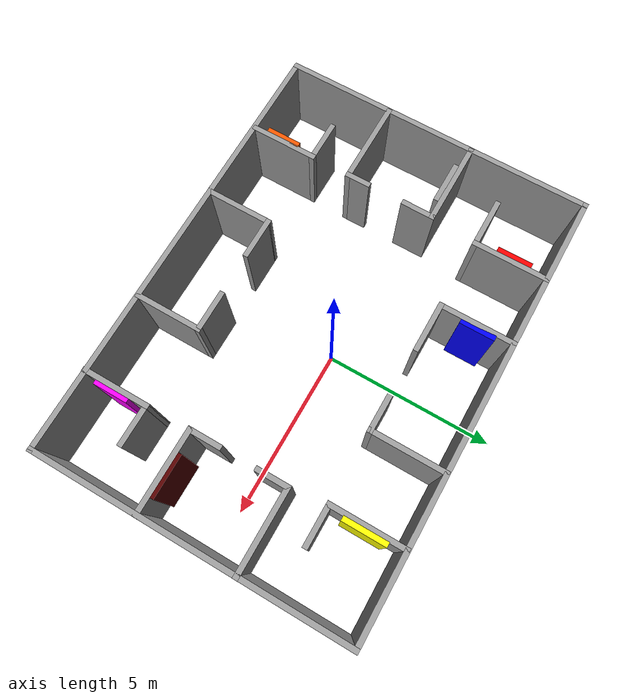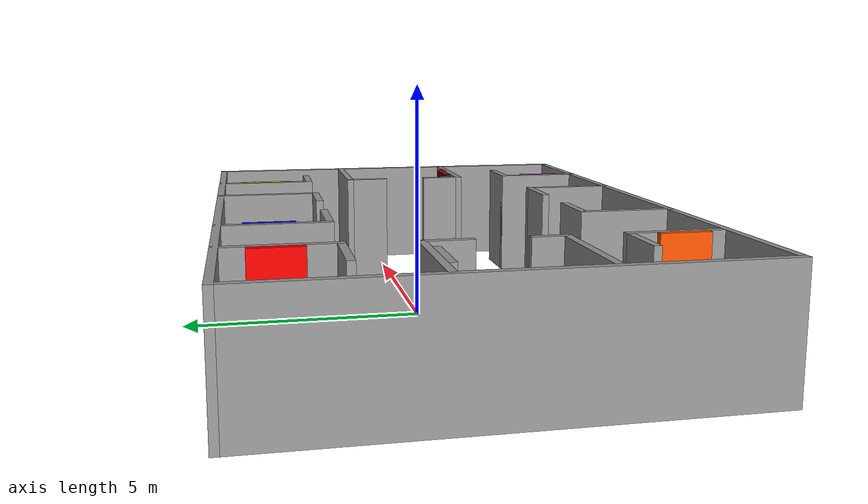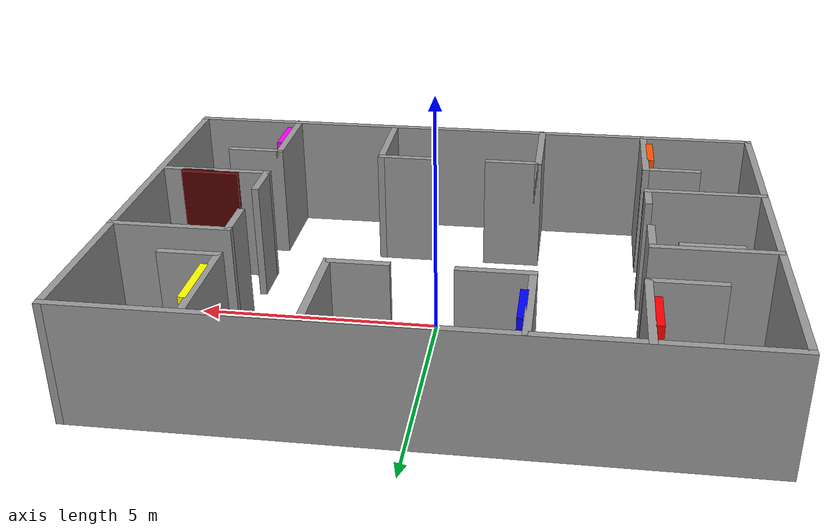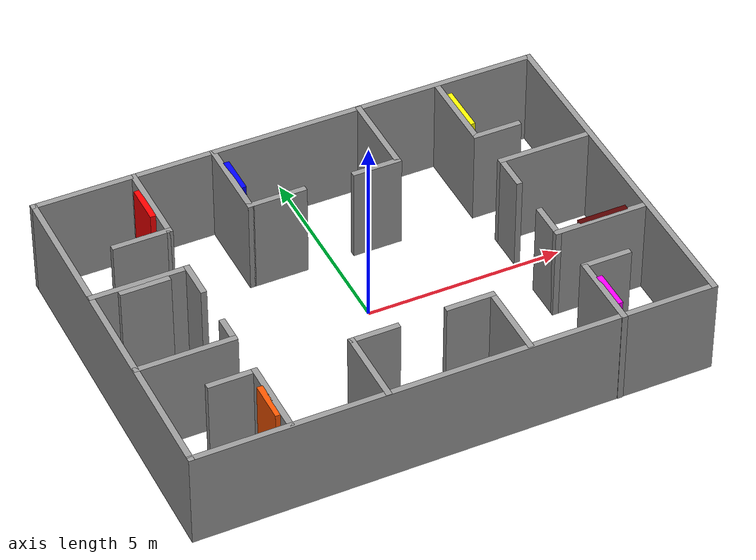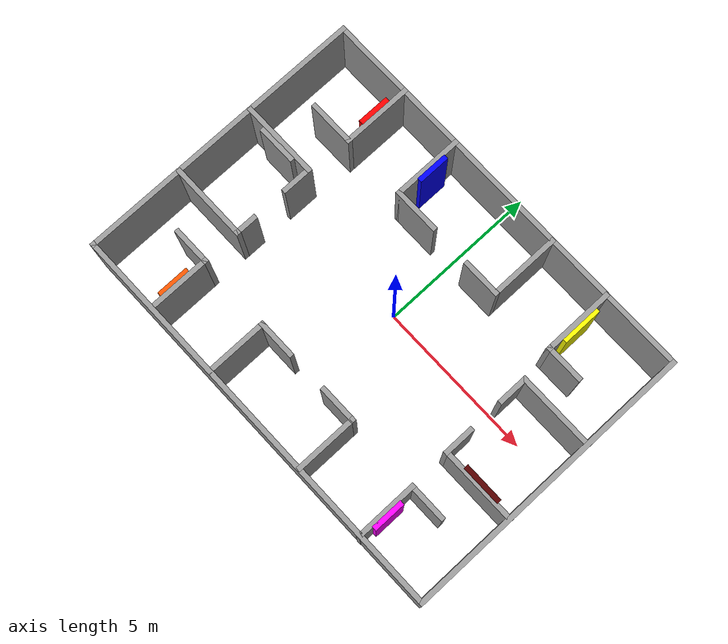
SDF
<?xml version='1.0'?>
<sdf version='1.6'>
  <model name='world2'>
    <pose frame=''>-0.14773 -0.383057 0 0 -0 0</pose>
    <link name='Wall_100'>
      <collision name='Wall_100_Collision'>
        <geometry>
          <box>
            <size>1.25 0.15 2.5</size>
          </box>
        </geometry>
        <pose frame=''>0 0 1.25 0 -0 0</pose>
      </collision>
      <visual name='Wall_100_Visual'>
        <pose frame=''>0 0 1.25 0 -0 0</pose>
        <geometry>
          <box>
            <size>1.25 0.15 2.5</size>
          </box>
        </geometry>
        <material>
          <script>
            <uri>file://media/materials/scripts/gazebo.material</uri>
            <name>Gazebo/Grey</name>
          </script>
          <ambient>1 1 1 1</ambient>
        </material>
        <meta>
          <layer>0</layer>
        </meta>
      </visual>
      <pose frame=''>1.33062 2.43561 0 0 -0 3.14159</pose>
    </link>
    <link name='Wall_104'>
      <collision name='Wall_104_Collision'>
        <geometry>
          <box>
            <size>1.25 0.15 2.5</size>
          </box>
        </geometry>
        <pose frame=''>0 0 1.25 0 -0 0</pose>
      </collision>
      <visual name='Wall_104_Visual'>
        <pose frame=''>0 0 1.25 0 -0 0</pose>
        <geometry>
          <box>
            <size>1.25 0.15 2.5</size>
          </box>
        </geometry>
        <material>
          <script>
            <uri>file://media/materials/scripts/gazebo.material</uri>
            <name>Gazebo/Grey</name>
          </script>
          <ambient>0 0 0 1</ambient>
        </material>
        <meta>
          <layer>0</layer>
        </meta>
      </visual>
      <pose frame=''>-5.17231 0.955395 0 0 -0 0</pose>
    </link>
    <link name='Wall_107'>
      <collision name='Wall_107_Collision'>
        <geometry>
          <box>
            <size>1 0.15 2.5</size>
          </box>
        </geometry>
        <pose frame=''>0 0 1.25 0 -0 0</pose>
      </collision>
      <visual name='Wall_107_Visual'>
        <pose frame=''>0 0 1.25 0 -0 0</pose>
        <geometry>
          <box>
            <size>1 0.15 2.5</size>
          </box>
        </geometry>
        <material>
          <script>
            <uri>file://media/materials/scripts/gazebo.material</uri>
            <name>Gazebo/Grey</name>
          </script>
          <ambient>1 0 0 1</ambient>
        </material>
        <meta>
          <layer>0</layer>
        </meta>
      </visual>
      <pose frame=''>-4.073 3.54743 0 0 0 -1.5708</pose>
    </link>
    <link name='Wall_109'>
      <collision name='Wall_109_Collision'>
        <geometry>
          <box>
            <size>1.25 0.15 2.5</size>
          </box>
        </geometry>
        <pose frame=''>0 0 1.25 0 -0 0</pose>
      </collision>
      <visual name='Wall_109_Visual'>
        <pose frame=''>0 0 1.25 0 -0 0</pose>
        <geometry>
          <box>
            <size>1.25 0.15 2.5</size>
          </box>
        </geometry>
        <material>
          <script>
            <uri>file://media/materials/scripts/gazebo.material</uri>
            <name>Gazebo/Grey</name>
          </script>
          <ambient>1 1 0 1</ambient>
        </material>
        <meta>
          <layer>0</layer>
        </meta>
      </visual>
      <pose frame=''>4.05288 3.48277 0 0 0 -1.5708</pose>
    </link>
    <link name='Wall_111'>
      <collision name='Wall_111_Collision'>
        <geometry>
          <box>
            <size>1 0.15 2.5</size>
          </box>
        </geometry>
        <pose frame=''>0 0 1.25 0 -0 0</pose>
      </collision>
      <visual name='Wall_111_Visual'>
        <pose frame=''>0 0 1.25 0 -0 0</pose>
        <geometry>
          <box>
            <size>1 0.15 2.5</size>
          </box>
        </geometry>
        <material>
          <script>
            <uri>file://media/materials/scripts/gazebo.material</uri>
            <name>Gazebo/Grey</name>
          </script>
          <ambient>1 0.333333 0 1</ambient>
        </material>
        <meta>
          <layer>0</layer>
        </meta>
      </visual>
      <pose frame=''>-4.17357 -3.65323 0 0 0 -1.5708</pose>
    </link>
    <link name='Wall_113'>
      <collision name='Wall_113_Collision'>
        <geometry>
          <box>
            <size>1.25 0.15 2.5</size>
          </box>
        </geometry>
        <pose frame=''>0 0 1.25 0 -0 0</pose>
      </collision>
      <visual name='Wall_113_Visual'>
        <pose frame=''>0 0 1.25 0 -0 0</pose>
        <geometry>
          <box>
            <size>1.25 0.15 2.5</size>
          </box>
        </geometry>
        <material>
          <script>
            <uri>file://media/materials/scripts/gazebo.material</uri>
            <name>Gazebo/Grey</name>
          </script>
          <ambient>0.333333 0 0 1</ambient>
        </material>
        <meta>
          <layer>0</layer>
        </meta>
      </visual>
      <pose frame=''>5.30686 -1.33755 0 0 -0 0</pose>
    </link>
    <link name='Wall_117'>
      <collision name='Wall_117_Collision'>
        <geometry>
          <box>
            <size>1 0.15 2.5</size>
          </box>
        </geometry>
        <pose frame=''>0 0 1.25 0 -0 0</pose>
      </collision>
      <visual name='Wall_117_Visual'>
        <pose frame=''>0 0 1.25 0 -0 0</pose>
        <geometry>
          <box>
            <size>1 0.15 2.5</size>
          </box>
        </geometry>
        <material>
          <script>
            <uri>file://media/materials/scripts/gazebo.material</uri>
            <name>Gazebo/Grey</name>
          </script>
          <ambient>1 0 1 1</ambient>
        </material>
        <meta>
          <layer>0</layer>
        </meta>
      </visual>
      <pose frame=''>4.23391 -3.67334 0 0 0 -1.5708</pose>
    </link>
    <link name='Wall_122'>
      <collision name='Wall_122_Collision'>
        <geometry>
          <box>
            <size>1 0.15 2.5</size>
          </box>
        </geometry>
        <pose frame=''>0 0 1.25 0 -0 0</pose>
      </collision>
      <visual name='Wall_122_Visual'>
        <pose frame=''>0 0 1.25 0 -0 0</pose>
        <geometry>
          <box>
            <size>1 0.15 2.5</size>
          </box>
        </geometry>
        <material>
          <script>
            <uri>file://media/materials/scripts/gazebo.material</uri>
            <name>Gazebo/Grey</name>
          </script>
          <ambient>0 0 1 1</ambient>
        </material>
        <meta>
          <layer>0</layer>
        </meta>
      </visual>
      <pose frame=''>-1.78005 3.58766 0 0 0 -1.5708</pose>
    </link>
    <link name='Wall_42'>
      <collision name='Wall_42_Collision'>
        <geometry>
          <box>
            <size>9.25 0.15 2.5</size>
          </box>
        </geometry>
        <pose frame=''>0 0 1.25 0 -0 0</pose>
      </collision>
      <visual name='Wall_42_Visual'>
        <pose frame=''>0 0 1.25 0 -0 0</pose>
        <geometry>
          <box>
            <size>9.25 0.15 2.5</size>
          </box>
        </geometry>
        <material>
          <script>
            <uri>file://media/materials/scripts/gazebo.material</uri>
            <name>Gazebo/Grey</name>
          </script>
          <ambient>1 1 1 1</ambient>
        </material>
        <meta>
          <layer>0</layer>
        </meta>
      </visual>
      <pose frame=''>-6.42629 0.005724 0 0 0 -1.5708</pose>
    </link>
    <link name='Wall_43'>
      <collision name='Wall_43_Collision'>
        <geometry>
          <box>
            <size>13 0.15 2.5</size>
          </box>
        </geometry>
        <pose frame=''>0 0 1.25 0 -0 0</pose>
      </collision>
      <visual name='Wall_43_Visual'>
        <pose frame=''>0 0 1.25 0 -0 0</pose>
        <geometry>
          <box>
            <size>13 0.15 2.5</size>
          </box>
        </geometry>
        <material>
          <script>
            <uri>file://media/materials/scripts/gazebo.material</uri>
            <name>Gazebo/Grey</name>
          </script>
          <ambient>1 1 1 1</ambient>
        </material>
        <meta>
          <layer>0</layer>
        </meta>
      </visual>
      <pose frame=''>-0.001286 -4.54428 0 0 -0 0</pose>
    </link>
    <link name='Wall_44'>
      <collision name='Wall_44_Collision'>
        <geometry>
          <box>
            <size>9.25 0.15 2.5</size>
          </box>
        </geometry>
        <pose frame=''>0 0 1.25 0 -0 0</pose>
      </collision>
      <visual name='Wall_44_Visual'>
        <pose frame=''>0 0 1.25 0 -0 0</pose>
        <geometry>
          <box>
            <size>9.25 0.15 2.5</size>
          </box>
        </geometry>
        <material>
          <script>
            <uri>file://media/materials/scripts/gazebo.material</uri>
            <name>Gazebo/Grey</name>
          </script>
          <ambient>1 1 1 1</ambient>
        </material>
        <meta>
          <layer>0</layer>
        </meta>
      </visual>
      <pose frame=''>6.42371 0.005724 0 0 -0 1.5708</pose>
    </link>
    <link name='Wall_45'>
      <collision name='Wall_45_Collision'>
        <geometry>
          <box>
            <size>13 0.15 2.5</size>
          </box>
        </geometry>
        <pose frame=''>0 0 1.25 0 -0 0</pose>
      </collision>
      <visual name='Wall_45_Visual'>
        <pose frame=''>0 0 1.25 0 -0 0</pose>
        <geometry>
          <box>
            <size>13 0.15 2.5</size>
          </box>
        </geometry>
        <material>
          <script>
            <uri>file://media/materials/scripts/gazebo.material</uri>
            <name>Gazebo/Grey</name>
          </script>
          <ambient>1 1 1 1</ambient>
        </material>
        <meta>
          <layer>0</layer>
        </meta>
      </visual>
      <pose frame=''>-0.001286 4.55572 0 0 -0 3.14159</pose>
    </link>
    <link name='Wall_47'>
      <collision name='Wall_47_Collision'>
        <geometry>
          <box>
            <size>2.25 0.15 2.5</size>
          </box>
        </geometry>
        <pose frame=''>0 0 1.25 0 -0 0</pose>
      </collision>
      <visual name='Wall_47_Visual'>
        <pose frame=''>0 0 1.25 0 -0 0</pose>
        <geometry>
          <box>
            <size>2.25 0.15 2.5</size>
          </box>
        </geometry>
        <material>
          <script>
            <uri>file://media/materials/scripts/gazebo.material</uri>
            <name>Gazebo/Grey</name>
          </script>
          <ambient>1 1 1 1</ambient>
        </material>
        <meta>
          <layer>0</layer>
        </meta>
      </visual>
      <pose frame=''>-3.9322 3.50572 0 0 0 -1.5708</pose>
    </link>
    <link name='Wall_48'>
      <collision name='Wall_48_Collision'>
        <geometry>
          <box>
            <size>1.5 0.15 2.5</size>
          </box>
        </geometry>
        <pose frame=''>0 0 1.25 0 -0 0</pose>
      </collision>
      <visual name='Wall_48_Visual'>
        <pose frame=''>0 0 1.25 0 -0 0</pose>
        <geometry>
          <box>
            <size>1.5 0.15 2.5</size>
          </box>
        </geometry>
        <material>
          <script>
            <uri>file://media/materials/scripts/gazebo.material</uri>
            <name>Gazebo/Grey</name>
          </script>
          <ambient>1 1 1 1</ambient>
        </material>
        <meta>
          <layer>0</layer>
        </meta>
      </visual>
      <pose frame=''>-4.6072 2.45572 0 0 -0 3.14159</pose>
    </link>
    <link name='Wall_50'>
      <collision name='Wall_50_Collision'>
        <geometry>
          <box>
            <size>2.5 0.15 2.5</size>
          </box>
        </geometry>
        <pose frame=''>0 0 1.25 0 -0 0</pose>
      </collision>
      <visual name='Wall_50_Visual'>
        <pose frame=''>0 0 1.25 0 -0 0</pose>
        <geometry>
          <box>
            <size>2.5 0.15 2.5</size>
          </box>
        </geometry>
        <material>
          <script>
            <uri>file://media/materials/scripts/gazebo.material</uri>
            <name>Gazebo/Grey</name>
          </script>
          <ambient>1 1 1 1</ambient>
        </material>
        <meta>
          <layer>0</layer>
        </meta>
      </visual>
      <pose frame=''>-5.23117 1.09619 0 0 -0 0</pose>
    </link>
    <link name='Wall_59'>
      <collision name='Wall_59_Collision'>
        <geometry>
          <box>
            <size>1 0.15 2.5</size>
          </box>
        </geometry>
        <pose frame=''>0 0 1.25 0 -0 0</pose>
      </collision>
      <visual name='Wall_59_Visual'>
        <pose frame=''>0 0 1.25 0 -0 0</pose>
        <geometry>
          <box>
            <size>1 0.15 2.5</size>
          </box>
        </geometry>
        <material>
          <script>
            <uri>file://media/materials/scripts/gazebo.material</uri>
            <name>Gazebo/Grey</name>
          </script>
          <ambient>1 1 1 1</ambient>
        </material>
        <meta>
          <layer>0</layer>
        </meta>
      </visual>
      <pose frame=''>-4.05617 0.671189 0 0 0 -1.5708</pose>
    </link>
    <link name='Wall_61'>
      <collision name='Wall_61_Collision'>
        <geometry>
          <box>
            <size>0.75 0.15 2.5</size>
          </box>
        </geometry>
        <pose frame=''>0 0 1.25 0 -0 0</pose>
      </collision>
      <visual name='Wall_61_Visual'>
        <pose frame=''>0 0 1.25 0 -0 0</pose>
        <geometry>
          <box>
            <size>0.75 0.15 2.5</size>
          </box>
        </geometry>
        <material>
          <script>
            <uri>file://media/materials/scripts/gazebo.material</uri>
            <name>Gazebo/Grey</name>
          </script>
          <ambient>1 1 1 1</ambient>
        </material>
        <meta>
          <layer>0</layer>
        </meta>
      </visual>
      <pose frame=''>-4.05288 -1.19505 0 0 0 -1.5708</pose>
    </link>
    <link name='Wall_62'>
      <collision name='Wall_62_Collision'>
        <geometry>
          <box>
            <size>2.5 0.15 2.5</size>
          </box>
        </geometry>
        <pose frame=''>0 0 1.25 0 -0 0</pose>
      </collision>
      <visual name='Wall_62_Visual'>
        <pose frame=''>0 0 1.25 0 -0 0</pose>
        <geometry>
          <box>
            <size>2.5 0.15 2.5</size>
          </box>
        </geometry>
        <material>
          <script>
            <uri>file://media/materials/scripts/gazebo.material</uri>
            <name>Gazebo/Grey</name>
          </script>
          <ambient>1 1 1 1</ambient>
        </material>
        <meta>
          <layer>0</layer>
        </meta>
      </visual>
      <pose frame=''>-5.22788 -1.49505 0 0 -0 3.14159</pose>
    </link>
    <link name='Wall_65'>
      <collision name='Wall_65_Collision'>
        <geometry>
          <box>
            <size>2 0.15 2.5</size>
          </box>
        </geometry>
        <pose frame=''>0 0 1.25 0 -0 0</pose>
      </collision>
      <visual name='Wall_65_Visual'>
        <pose frame=''>0 0 1.25 0 -0 0</pose>
        <geometry>
          <box>
            <size>2 0.15 2.5</size>
          </box>
        </geometry>
        <material>
          <script>
            <uri>file://media/materials/scripts/gazebo.material</uri>
            <name>Gazebo/Grey</name>
          </script>
          <ambient>1 1 1 1</ambient>
        </material>
        <meta>
          <layer>0</layer>
        </meta>
      </visual>
      <pose frame=''>-4.05288 -3.57038 0 0 -0 1.5708</pose>
    </link>
    <link name='Wall_66'>
      <collision name='Wall_66_Collision'>
        <geometry>
          <box>
            <size>1.25 0.15 2.5</size>
          </box>
        </geometry>
        <pose frame=''>0 0 1.25 0 -0 0</pose>
      </collision>
      <visual name='Wall_66_Visual'>
        <pose frame=''>0 0 1.25 0 -0 0</pose>
        <geometry>
          <box>
            <size>1.25 0.15 2.5</size>
          </box>
        </geometry>
        <material>
          <script>
            <uri>file://media/materials/scripts/gazebo.material</uri>
            <name>Gazebo/Grey</name>
          </script>
          <ambient>1 1 1 1</ambient>
        </material>
        <meta>
          <layer>0</layer>
        </meta>
      </visual>
      <pose frame=''>-4.60288 -2.64538 0 0 -0 3.14159</pose>
    </link>
    <link name='Wall_69'>
      <collision name='Wall_69_Collision'>
        <geometry>
          <box>
            <size>2.25 0.15 2.5</size>
          </box>
        </geometry>
        <pose frame=''>0 0 1.25 0 -0 0</pose>
      </collision>
      <visual name='Wall_69_Visual'>
        <pose frame=''>0 0 1.25 0 -0 0</pose>
        <geometry>
          <box>
            <size>2.25 0.15 2.5</size>
          </box>
        </geometry>
        <material>
          <script>
            <uri>file://media/materials/scripts/gazebo.material</uri>
            <name>Gazebo/Grey</name>
          </script>
          <ambient>1 1 1 1</ambient>
        </material>
        <meta>
          <layer>0</layer>
        </meta>
      </visual>
      <pose frame=''>3.9322 3.48561 0 0 0 -1.5708</pose>
    </link>
    <link name='Wall_70'>
      <collision name='Wall_70_Collision'>
        <geometry>
          <box>
            <size>1.25 0.15 2.5</size>
          </box>
        </geometry>
        <pose frame=''>0 0 1.25 0 -0 0</pose>
      </collision>
      <visual name='Wall_70_Visual'>
        <pose frame=''>0 0 1.25 0 -0 0</pose>
        <geometry>
          <box>
            <size>1.25 0.15 2.5</size>
          </box>
        </geometry>
        <material>
          <script>
            <uri>file://media/materials/scripts/gazebo.material</uri>
            <name>Gazebo/Grey</name>
          </script>
          <ambient>1 1 1 1</ambient>
        </material>
        <meta>
          <layer>0</layer>
        </meta>
      </visual>
      <pose frame=''>4.4822 2.43561 0 0 -0 0</pose>
    </link>
    <link name='Wall_81'>
      <collision name='Wall_81_Collision'>
        <geometry>
          <box>
            <size>2.5 0.15 2.5</size>
          </box>
        </geometry>
        <pose frame=''>0 0 1.25 0 -0 0</pose>
      </collision>
      <visual name='Wall_81_Visual'>
        <pose frame=''>0 0 1.25 0 -0 0</pose>
        <geometry>
          <box>
            <size>2.5 0.15 2.5</size>
          </box>
        </geometry>
        <material>
          <script>
            <uri>file://media/materials/scripts/gazebo.material</uri>
            <name>Gazebo/Grey</name>
          </script>
          <ambient>1 1 1 1</ambient>
        </material>
        <meta>
          <layer>0</layer>
        </meta>
      </visual>
      <pose frame=''>5.25129 1.37778 0 0 -0 3.14159</pose>
    </link>
    <link name='Wall_82'>
      <collision name='Wall_82_Collision'>
        <geometry>
          <box>
            <size>1 0.15 2.5</size>
          </box>
        </geometry>
        <pose frame=''>0 0 1.25 0 -0 0</pose>
      </collision>
      <visual name='Wall_82_Visual'>
        <pose frame=''>0 0 1.25 0 -0 0</pose>
        <geometry>
          <box>
            <size>1 0.15 2.5</size>
          </box>
        </geometry>
        <material>
          <script>
            <uri>file://media/materials/scripts/gazebo.material</uri>
            <name>Gazebo/Grey</name>
          </script>
          <ambient>1 1 1 1</ambient>
        </material>
        <meta>
          <layer>0</layer>
        </meta>
      </visual>
      <pose frame=''>4.07629 0.95278 0 0 0 -1.5708</pose>
    </link>
    <link name='Wall_84'>
      <collision name='Wall_84_Collision'>
        <geometry>
          <box>
            <size>2.5 0.15 2.5</size>
          </box>
        </geometry>
        <pose frame=''>0 0 1.25 0 -0 0</pose>
      </collision>
      <visual name='Wall_84_Visual'>
        <pose frame=''>0 0 1.25 0 -0 0</pose>
        <geometry>
          <box>
            <size>2.5 0.15 2.5</size>
          </box>
        </geometry>
        <material>
          <script>
            <uri>file://media/materials/scripts/gazebo.material</uri>
            <name>Gazebo/Grey</name>
          </script>
          <ambient>1 1 1 1</ambient>
        </material>
        <meta>
          <layer>0</layer>
        </meta>
      </visual>
      <pose frame=''>5.25129 -1.43812 0 0 -0 3.14159</pose>
    </link>
    <link name='Wall_85'>
      <collision name='Wall_85_Collision'>
        <geometry>
          <box>
            <size>1 0.15 2.5</size>
          </box>
        </geometry>
        <pose frame=''>0 0 1.25 0 -0 0</pose>
      </collision>
      <visual name='Wall_85_Visual'>
        <pose frame=''>0 0 1.25 0 -0 0</pose>
        <geometry>
          <box>
            <size>1 0.15 2.5</size>
          </box>
        </geometry>
        <material>
          <script>
            <uri>file://media/materials/scripts/gazebo.material</uri>
            <name>Gazebo/Grey</name>
          </script>
          <ambient>1 1 1 1</ambient>
        </material>
        <meta>
          <layer>0</layer>
        </meta>
      </visual>
      <pose frame=''>4.07629 -1.01312 0 0 -0 1.5708</pose>
    </link>
    <link name='Wall_87'>
      <collision name='Wall_87_Collision'>
        <geometry>
          <box>
            <size>2 0.15 2.5</size>
          </box>
        </geometry>
        <pose frame=''>0 0 1.25 0 -0 0</pose>
      </collision>
      <visual name='Wall_87_Visual'>
        <pose frame=''>0 0 1.25 0 -0 0</pose>
        <geometry>
          <box>
            <size>2 0.15 2.5</size>
          </box>
        </geometry>
        <material>
          <script>
            <uri>file://media/materials/scripts/gazebo.material</uri>
            <name>Gazebo/Grey</name>
          </script>
          <ambient>1 1 1 1</ambient>
        </material>
        <meta>
          <layer>0</layer>
        </meta>
      </visual>
      <pose frame=''>4.11323 -3.63072 0 0 -0 1.5708</pose>
    </link>
    <link name='Wall_88'>
      <collision name='Wall_88_Collision'>
        <geometry>
          <box>
            <size>1.25 0.15 2.5</size>
          </box>
        </geometry>
        <pose frame=''>0 0 1.25 0 -0 0</pose>
      </collision>
      <visual name='Wall_88_Visual'>
        <pose frame=''>0 0 1.25 0 -0 0</pose>
        <geometry>
          <box>
            <size>1.25 0.15 2.5</size>
          </box>
        </geometry>
        <material>
          <script>
            <uri>file://media/materials/scripts/gazebo.material</uri>
            <name>Gazebo/Grey</name>
          </script>
          <ambient>1 1 1 1</ambient>
        </material>
        <meta>
          <layer>0</layer>
        </meta>
      </visual>
      <pose frame=''>4.66323 -2.70572 0 0 -0 0</pose>
    </link>
    <link name='Wall_90'>
      <collision name='Wall_90_Collision'>
        <geometry>
          <box>
            <size>2 0.15 2.5</size>
          </box>
        </geometry>
        <pose frame=''>0 0 1.25 0 -0 0</pose>
      </collision>
      <visual name='Wall_90_Visual'>
        <pose frame=''>0 0 1.25 0 -0 0</pose>
        <geometry>
          <box>
            <size>2 0.15 2.5</size>
          </box>
        </geometry>
        <material>
          <script>
            <uri>file://media/materials/scripts/gazebo.material</uri>
            <name>Gazebo/Grey</name>
          </script>
          <ambient>1 1 1 1</ambient>
        </material>
        <meta>
          <layer>0</layer>
        </meta>
      </visual>
      <pose frame=''>-1.71971 -3.61061 0 0 -0 1.5708</pose>
    </link>
    <link name='Wall_91'>
      <collision name='Wall_91_Collision'>
        <geometry>
          <box>
            <size>1.25 0.15 2.5</size>
          </box>
        </geometry>
        <pose frame=''>0 0 1.25 0 -0 0</pose>
      </collision>
      <visual name='Wall_91_Visual'>
        <pose frame=''>0 0 1.25 0 -0 0</pose>
        <geometry>
          <box>
            <size>1.25 0.15 2.5</size>
          </box>
        </geometry>
        <material>
          <script>
            <uri>file://media/materials/scripts/gazebo.material</uri>
            <name>Gazebo/Grey</name>
          </script>
          <ambient>1 1 1 1</ambient>
        </material>
        <meta>
          <layer>0</layer>
        </meta>
      </visual>
      <pose frame=''>-1.16971 -2.68561 0 0 -0 0</pose>
    </link>
    <link name='Wall_93'>
      <collision name='Wall_93_Collision'>
        <geometry>
          <box>
            <size>2 0.15 2.5</size>
          </box>
        </geometry>
        <pose frame=''>0 0 1.25 0 -0 0</pose>
      </collision>
      <visual name='Wall_93_Visual'>
        <pose frame=''>0 0 1.25 0 -0 0</pose>
        <geometry>
          <box>
            <size>2 0.15 2.5</size>
          </box>
        </geometry>
        <material>
          <script>
            <uri>file://media/materials/scripts/gazebo.material</uri>
            <name>Gazebo/Grey</name>
          </script>
          <ambient>1 1 1 1</ambient>
        </material>
        <meta>
          <layer>0</layer>
        </meta>
      </visual>
      <pose frame=''>1.78005 -3.5905 0 0 -0 1.5708</pose>
    </link>
    <link name='Wall_94'>
      <collision name='Wall_94_Collision'>
        <geometry>
          <box>
            <size>1.25 0.15 2.5</size>
          </box>
        </geometry>
        <pose frame=''>0 0 1.25 0 -0 0</pose>
      </collision>
      <visual name='Wall_94_Visual'>
        <pose frame=''>0 0 1.25 0 -0 0</pose>
        <geometry>
          <box>
            <size>1.25 0.15 2.5</size>
          </box>
        </geometry>
        <material>
          <script>
            <uri>file://media/materials/scripts/gazebo.material</uri>
            <name>Gazebo/Grey</name>
          </script>
          <ambient>1 1 1 1</ambient>
        </material>
        <meta>
          <layer>0</layer>
        </meta>
      </visual>
      <pose frame=''>1.23005 -2.6655 0 0 -0 3.14159</pose>
    </link>
    <link name='Wall_96'>
      <collision name='Wall_96_Collision'>
        <geometry>
          <box>
            <size>2.25 0.15 2.5</size>
          </box>
        </geometry>
        <pose frame=''>0 0 1.25 0 -0 0</pose>
      </collision>
      <visual name='Wall_96_Visual'>
        <pose frame=''>0 0 1.25 0 -0 0</pose>
        <geometry>
          <box>
            <size>2.25 0.15 2.5</size>
          </box>
        </geometry>
        <material>
          <script>
            <uri>file://media/materials/scripts/gazebo.material</uri>
            <name>Gazebo/Grey</name>
          </script>
          <ambient>1 1 1 1</ambient>
        </material>
        <meta>
          <layer>0</layer>
        </meta>
      </visual>
      <pose frame=''>-1.90073 3.50572 0 0 0 -1.5708</pose>
    </link>
    <link name='Wall_97'>
      <collision name='Wall_97_Collision'>
        <geometry>
          <box>
            <size>1.5 0.15 2.5</size>
          </box>
        </geometry>
        <pose frame=''>0 0 1.25 0 -0 0</pose>
      </collision>
      <visual name='Wall_97_Visual'>
        <pose frame=''>0 0 1.25 0 -0 0</pose>
        <geometry>
          <box>
            <size>1.5 0.15 2.5</size>
          </box>
        </geometry>
        <material>
          <script>
            <uri>file://media/materials/scripts/gazebo.material</uri>
            <name>Gazebo/Grey</name>
          </script>
          <ambient>1 1 1 1</ambient>
        </material>
        <meta>
          <layer>0</layer>
        </meta>
      </visual>
      <pose frame=''>-1.22573 2.45572 0 0 -0 0</pose>
    </link>
    <link name='Wall_99'>
      <collision name='Wall_99_Collision'>
        <geometry>
          <box>
            <size>2.25 0.15 2.5</size>
          </box>
        </geometry>
        <pose frame=''>0 0 1.25 0 -0 0</pose>
      </collision>
      <visual name='Wall_99_Visual'>
        <pose frame=''>0 0 1.25 0 -0 0</pose>
        <geometry>
          <box>
            <size>2.25 0.15 2.5</size>
          </box>
        </geometry>
        <material>
          <script>
            <uri>file://media/materials/scripts/gazebo.material</uri>
            <name>Gazebo/Grey</name>
          </script>
          <ambient>1 1 1 1</ambient>
        </material>
        <meta>
          <layer>0</layer>
        </meta>
      </visual>
      <pose frame=''>1.88062 3.48561 0 0 0 -1.5708</pose>
    </link>
    <static>1</static>
  </model>
</sdf>
